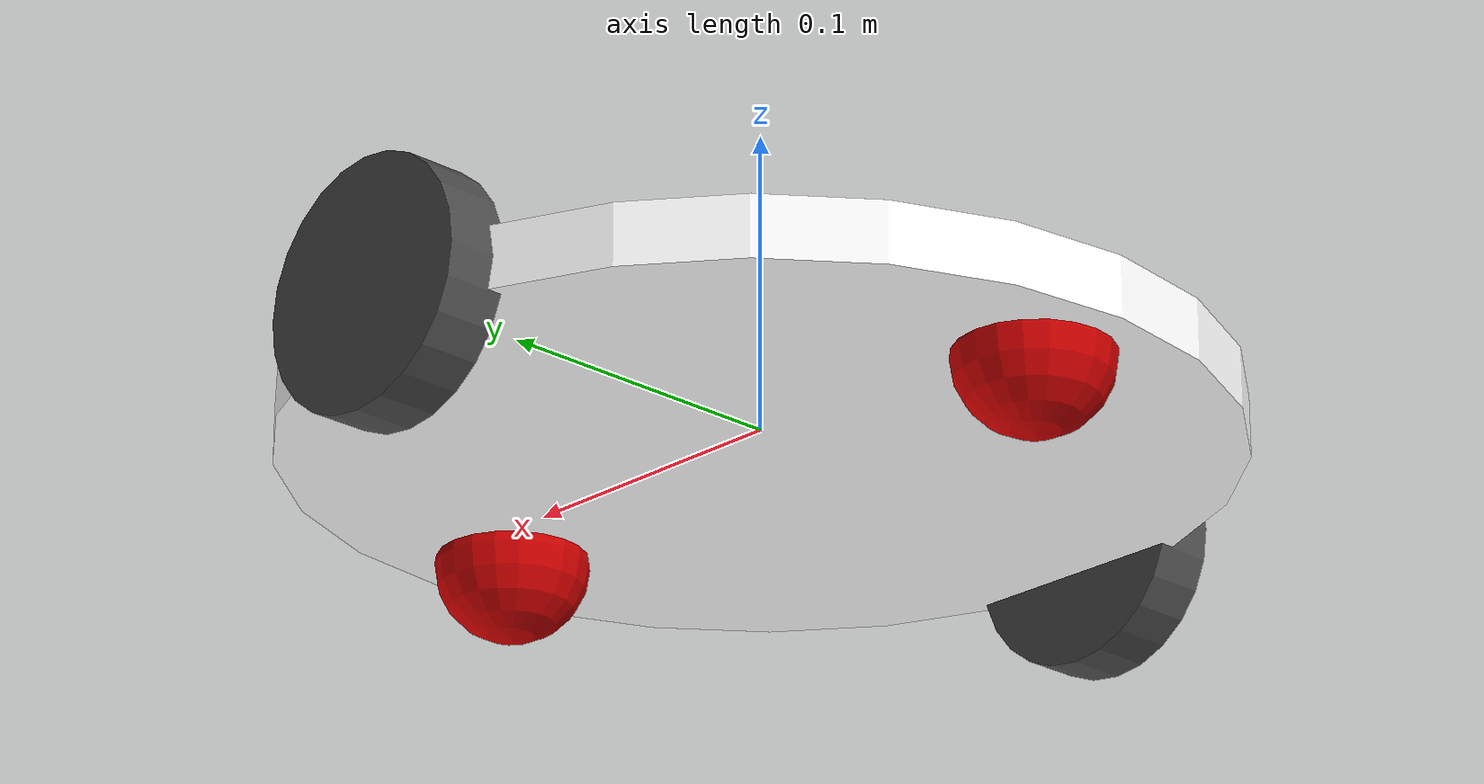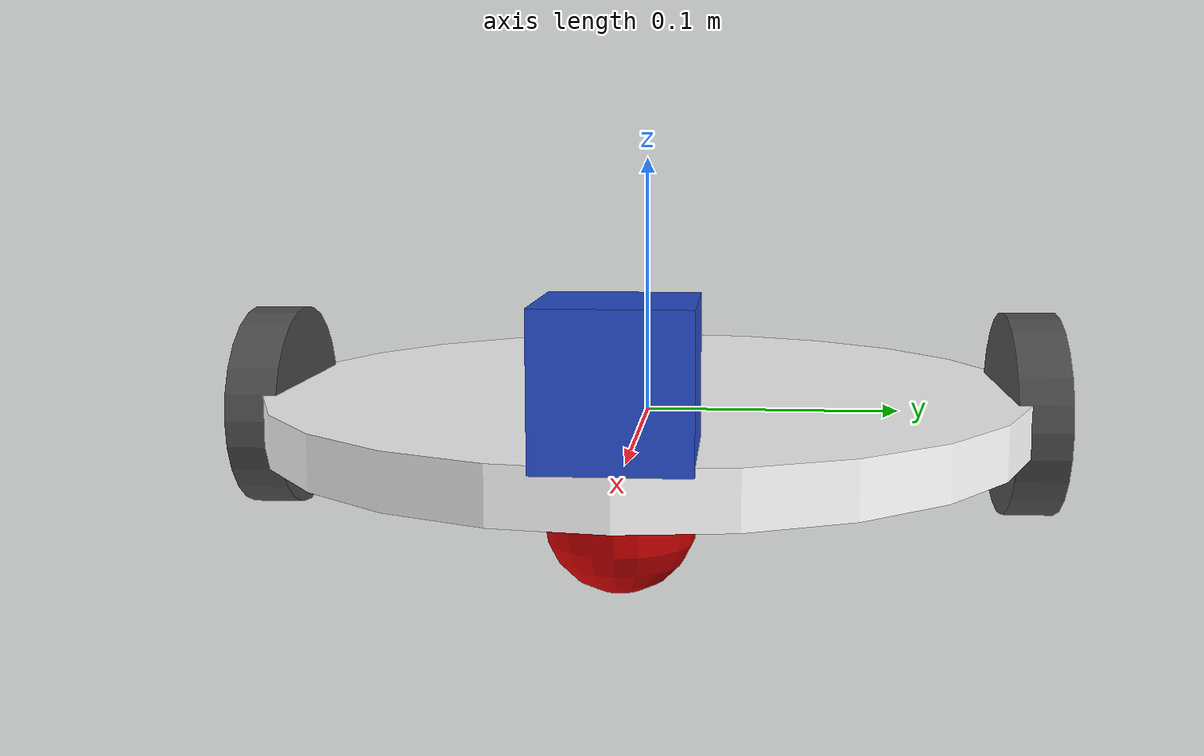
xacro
<?xml version="1.0"?>
<robot name="diff_robot"
    xmlns:xacro="http://ros.org/wiki/xacro">

    <!-- XACRO LIBRARIES-->
    <xacro:include filename="$(find diff_robot)/urdf/cylinder_wheel.urdf.xacro" />
    <xacro:include filename="$(find diff_robot)/urdf/visual_sensor.xacro" />

    <!--MATERIALS-->
    <material name="blue">
        <color rgba="0 0 0.8 1" />
    </material>
    <material name="green">
        <color rgba="0 0.8 0 1" />
    </material>
    <material name="red">
        <color rgba="0.8 0 0 1" />
    </material>
    <material name="black">
        <color rgba="0 0 0 1" />
    </material>
    <material name="white">
        <color rgba="1 1 1 1" />
    </material>

    <!--XACRO PROPERTIES - SHAPE PARAMETERS-->
    <xacro:property name="base_l" value="0.02" />
    <xacro:property name="base_r" value="0.15" />
    <xacro:property name="base_m" value="5" />
    <xacro:property name="castor_r" value="0.025" />
    <xacro:property name="castor_m" value="0.5" />
    <!--XACRO PROPERTIES - POSITIONAL PARAMETERS-->
    <xacro:property name="castor_rpy" value="1.57 0 0" />
    <xacro:property name="castor_fr_xyz" value="0 0.02 0" />
    <xacro:property name="castor_bk_xyz" value="0.02 0.02 0" />
    <!--XACRO MACRO - BASE LINK GEOMETRY-->
    <xacro:macro name="base_geom">
        <geometry>
            <cylinder length="${base_l}" radius="${base_r}" />
        </geometry>
    </xacro:macro>
    <!--XACRO MACRO - CASTOR WHEEL GEOMETRY-->
    <xacro:macro name="castor_geom">
        <geometry>
            <sphere radius="${castor_r}" />
        </geometry>
    </xacro:macro>
    <!--XACRO MACRO - CASTOR INERTIA-->
    <xacro:macro name="castor_inertial">
        <inertial>
            <mass value="${castor_m}" />
            <inertia ixx="0.0001" ixy="0.0" ixz="0.0" iyy="0.001" iyz="0.0" izz="0.001" />
        </inertial>
    </xacro:macro>

    <!--LINKS DEFINITION-->
    <link name="base_link">
        <visual>
            <xacro:base_geom />
            <material name="white" />
        </visual>
        <collision>
            <xacro:base_geom />
        </collision>
        <inertial>
            <mass value="${base_m}" />
            <origin xyz="0 0 0" />
            <xacro:cylinder_inertial m="${base_m}" r="${base_r}" h="${base_l}" />
        </inertial>
    </link>
    <link name="castor_front_wheel">
        <visual>
            <origin rpy="${castor_rpy}" xyz="${castor_fr_xyz}" />
            <xacro:castor_geom />
            <material name="red" />
        </visual>
        <collision>
            <origin rpy="${castor_rpy}" xyz="${castor_fr_xyz}" />
            <xacro:castor_geom />
        </collision>
        <xacro:castor_inertial />
    </link>
    <link name="castor_back_wheel">
        <visual>
            <origin rpy="${castor_rpy}" xyz="${castor_bk_xyz}" />
            <xacro:castor_geom />
            <material name="red" />
        </visual>
        <collision>
            <origin rpy="${castor_rpy}" xyz="${castor_bk_xyz}" />
            <xacro:castor_geom />
        </collision>
        <xacro:castor_inertial />

    </link>

    <!--JOINTS DEFINITION-->
    <joint name="castor_frwheel_joint" type="fixed">
        <parent link="base_link" />
        <child link="castor_front_wheel" />
        <origin rpy="-1.57 0 0" xyz="0.115 0.0 0.007" />
    </joint>
    <joint name="castor_bkwheel_joint" type="fixed">
        <parent link="base_link" />
        <child link="castor_back_wheel" />
        <origin rpy="-1.57 0 0" xyz="-0.135 0.0 0.009" />
    </joint>

    <!--WHEELS DEFINITION-->
    <xacro:cylinder_wheel fb="front" lr="right" parent="base_link" translateX="0" translateY="0.5" flipY="1" />
    <xacro:cylinder_wheel fb="front" lr="left" parent="base_link" translateX="0" translateY="-0.5" flipY="1" />

    <!--VISUAL SENSOR-->
    <xacro:hokuyo base_radius="${base_r}" base_height="${base_l}" />

    <!-- Gazebo plugin for ROS Control -->
    <gazebo>
        <plugin name="gazebo_ros_control" filename="libgazebo_ros_control.so">
            <robotNamespace>/</robotNamespace>
        </plugin>
    </gazebo>

</robot>

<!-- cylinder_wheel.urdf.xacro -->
<robot name="wheel"
  xmlns:xacro="http://www.ros.org/wiki/xacro">

  <!--XACRO PROPERTIES - CONSTANTS-->
  <xacro:property name="M_PI" value="3.1415926535897931" />
  <xacro:property name="M_PI_2" value="1.570796327" />
  <xacro:property name="DEG_TO_RAD" value="0.017453293" />

  <!-- Wheels -->
  <xacro:property name="wheel_radius" value="0.04" />
  <xacro:property name="wheel_height" value="0.02" />
  <xacro:property name="wheel_mass" value="2.5" />
  <!-- in kg-->

  <xacro:property name="base_x_origin_to_wheel_origin" value="0.25" />
  <xacro:property name="base_y_origin_to_wheel_origin" value="0.3" />
  <xacro:property name="base_z_origin_to_wheel_origin" value="0.0" />

  <xacro:macro name="cylinder_inertial" params="m r h">
    <inertia ixx="${m*(3*r*r+h*h)/12}" ixy = "0" ixz = "0" iyy="${m*(3*r*r+h*h)/12}" iyz = "0" izz="${m*r*r/2}" />
  </xacro:macro>

  <xacro:macro name="cylinder_wheel" params="fb lr parent translateX translateY flipY">    <!--fb : front, back ; lr: left, right -->
    <link name="${fb}_${lr}_wheel">
      <visual>
        <origin xyz="0 0 0" rpy="${flipY*M_PI/2} 0  0 " />
        <geometry>
          <cylinder length="${wheel_height}" radius="${wheel_radius}" />
        </geometry>
        <material name="DarkGray" />
      </visual>
      <collision>
        <origin xyz="0 0 0" rpy="${flipY*M_PI/2} 0 0 " />
        <geometry>
          <cylinder length="${wheel_height}" radius="${wheel_radius}" />
        </geometry>
      </collision>
      <inertial>
        <mass value="${wheel_mass}" />
        <origin xyz="0 0 0" />
        <xacro:cylinder_inertial m="${wheel_mass}" r="${wheel_radius}" h="${wheel_height}" />
      </inertial>
    </link>

    <gazebo reference="${fb}_${lr}_wheel">
      <mu1 value="1.0" />
      <mu2 value="1.0" />
      <kp value="10000000.0" />
      <kd value="1.0" />
      <fdir1 value="1 0 0" />
      <material>Gazebo/Grey</material>
      <turnGravityOff>false</turnGravityOff>
    </gazebo>

    <joint name="${fb}_${lr}_wheel_joint" type="continuous">
      <parent link="${parent}" />
      <child link="${fb}_${lr}_wheel" />
      <origin xyz="${translateX * base_x_origin_to_wheel_origin} ${translateY * base_y_origin_to_wheel_origin} ${base_z_origin_to_wheel_origin}" rpy="0 0 0" />
      <axis xyz="0 1 0" rpy="0  0" />
      <limit effort="100" velocity="100" />
      <joint_properties damping="0.0" friction="0.0" />
    </joint>

    <!-- Transmission is important to link the joints and the controller -->
    <transmission name="${fb}_${lr}_wheel_joint_trans">
      <type>transmission_interface/SimpleTransmission</type>
      <joint name="${fb}_${lr}_wheel_joint">
        <hardwareInterface>hardware_interface/VelocityJointInterface</hardwareInterface>
      </joint>
      <actuator name="${fb}_${lr}_wheel_joint_motor">
        <mechanicalReduction>1</mechanicalReduction>
      </actuator>
    </transmission>

  </xacro:macro>
</robot>

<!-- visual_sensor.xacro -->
<robot name="hokuyo_sensor"
    xmlns:xacro="http://www.ros.org/wiki/xacro">
    <!-- Hokuyo Laser scanner -->
    <xacro:property name="hokuyo_size" value="0.05" />

    <xacro:macro name="hokuyo" params="base_radius base_height">
        <link name="hokuyo_link">
            <visual>
                <origin xyz="0 0 0" rpy="0 0 0" />
                <geometry>
                    <box size="${hokuyo_size} ${hokuyo_size} ${hokuyo_size}" />
                </geometry>
                <material name="Blue" />
            </visual>
        </link>
        <joint name="hokuyo_joint" type="fixed">
            <origin xyz="${base_radius - hokuyo_size/2} 0 ${base_height+hokuyo_size/4}" rpy="0 0 0" />
            <parent link="base_link" />
            <child link="hokuyo_link" />
        </joint>
        <gazebo reference="hokuyo_link">
            <material>Gazebo/Blue</material>
            <turnGravityOff>false</turnGravityOff>
            <sensor type="ray" name="head_hokuyo_sensor">
                <pose>${hokuyo_size/2} 0 0 0 0 0</pose>
                <visualize>false</visualize>
                <update_rate>40</update_rate>
                <ray>
                    <scan>
                        <horizontal>
                            <samples>720</samples>
                            <resolution>1</resolution>
                            <min_angle>-1.570796</min_angle>
                            <max_angle>1.570796</max_angle>
                        </horizontal>
                    </scan>
                    <range>
                        <min>0.10</min>
                        <max>10.0</max>
                        <resolution>0.001</resolution>
                    </range>
                </ray>
                <plugin name="gazebo_ros_head_hokuyo_controller" filename="libgazebo_ros_laser.so">
                    <topicName>/scan</topicName>
                    <frameName>hokuyo_link</frameName>
                </plugin>
            </sensor>
        </gazebo>
    </xacro:macro>
</robot>
